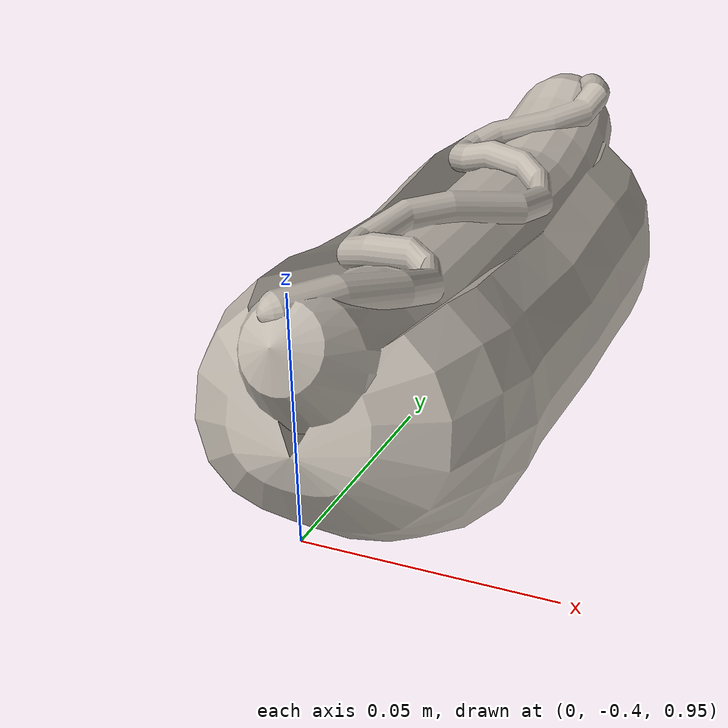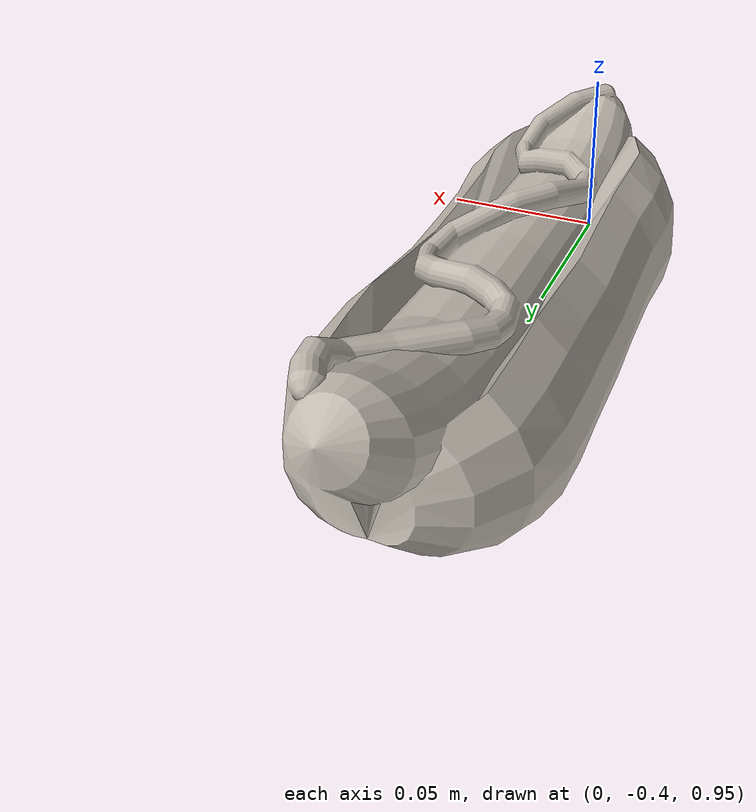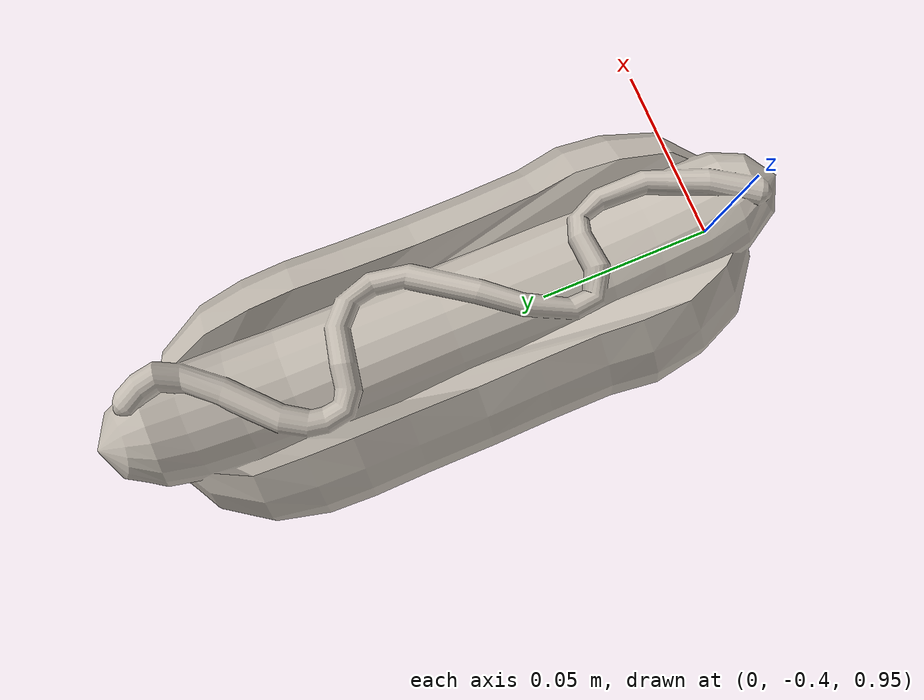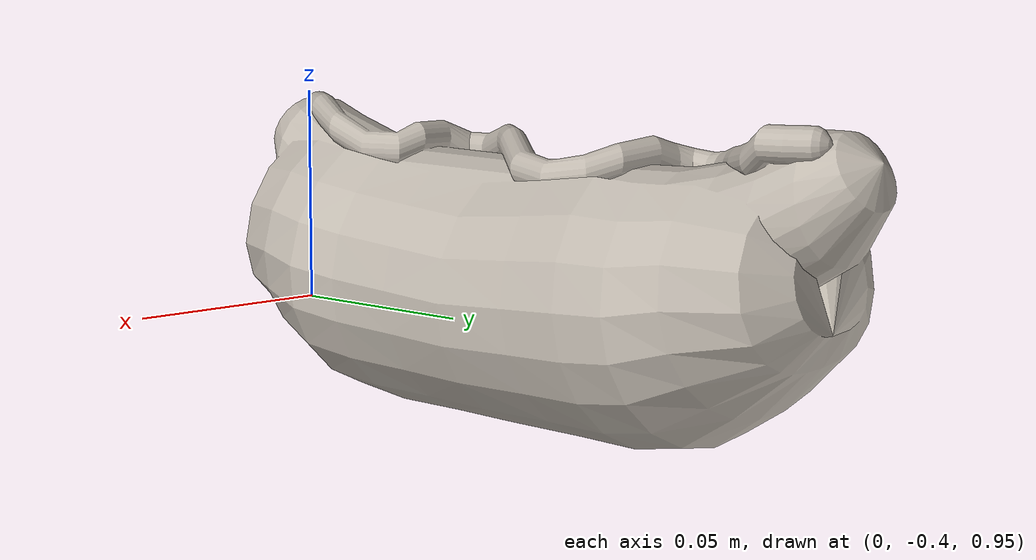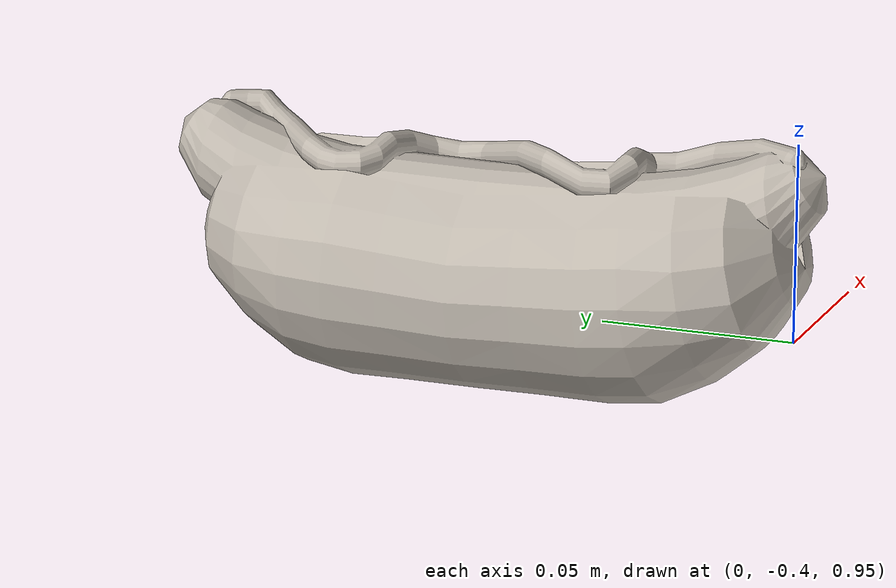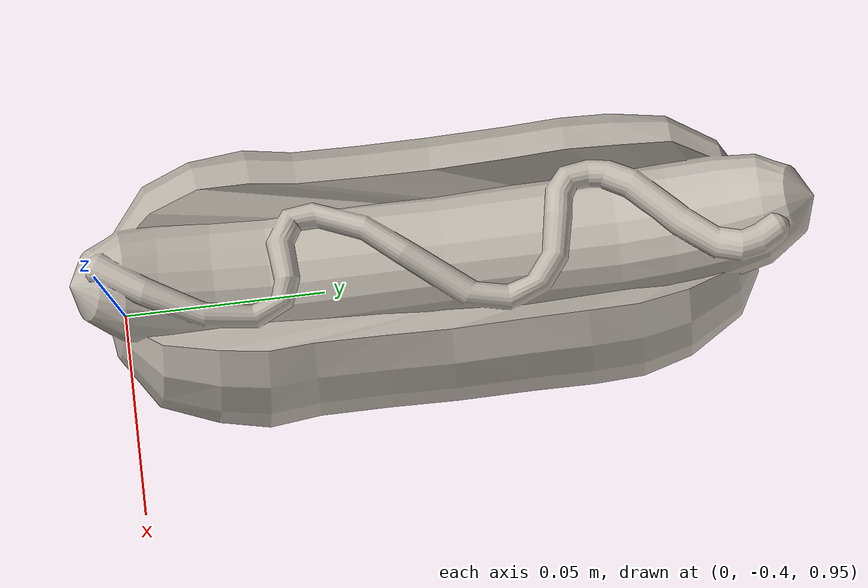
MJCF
<mujoco model="hot_dog_2_scaled_0.8">
  <asset>
    <mesh file="./hot_dog_2/visual/model_normalized_0.obj" name="model_normalized_0_vis" scale="0.174 0.174 0.174"/>
    <texture type="2d" name="image0" file="./hot_dog_2/visual/image0.png"/>
    <material name="aiStandardSurface1.001" texture="image0" specular="0.5" shininess="0.25"/>
  </asset>
  <worldbody>
    <body name="hot_dog" pos="0 -0.32 0.965" quat="0.70710678 0 0 0.70710678">
      <freejoint name="hot_dog_free"/>
      <geom solimp="0.998 0.998 0.001" solref="0.001 1" density="100" friction="0.95 0.3 0.1" type="mesh" mesh="model_normalized_0_vis" conaffinity="0" contype="0" group="1" material="aiStandardSurface1.001"/>
      <geom type="box" size="0.072 0.032 0.03072" solimp="0.998 0.998 0.001" solref="0.001 1" density="100" friction="0.95 0.3 0.1" rgba="0.8 0.8 0.8 0" group="0"/>
    </body>
    <site rgba="0 0 0 0" size="0.004" pos="-0.0001352937 0.0 -0.02232910912" name="bottom_site"/>
    <site rgba="0 0 0 0" size="0.004" pos="-0.0001352937 0.0 0.02312302936" name="top_site"/>
    <site rgba="0 0 0 0" size="0.004" pos="0.02185647524 0.05701571332 0.00039696012" name="horizontal_radius_site"/>
  </worldbody>
</mujoco>
